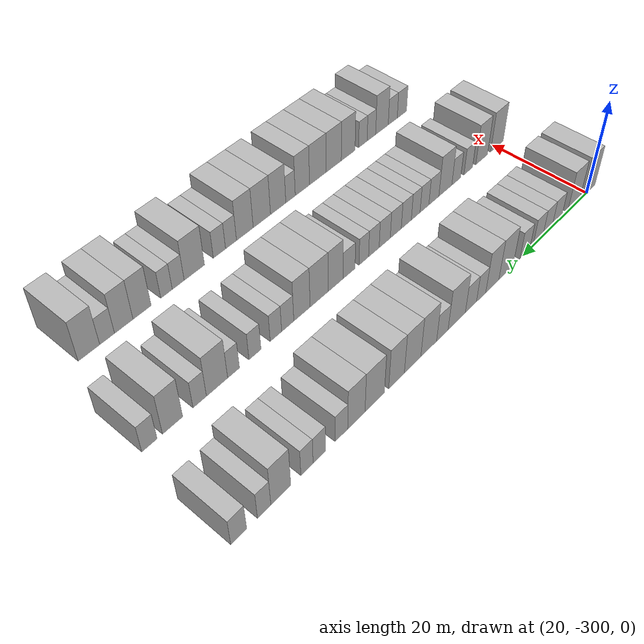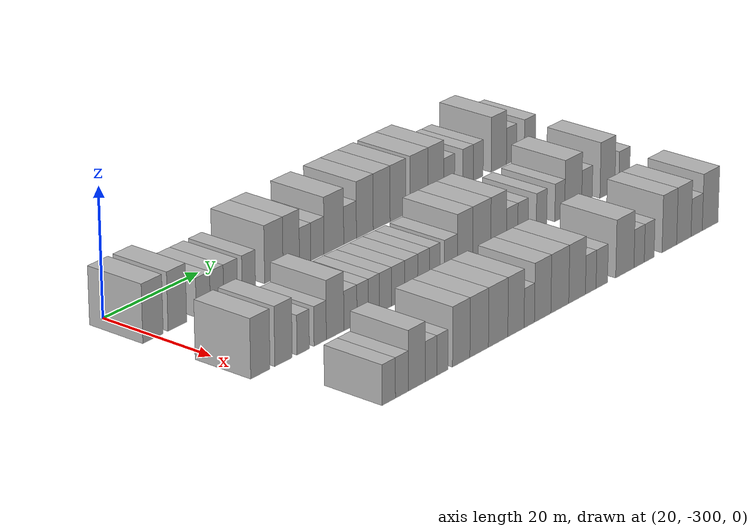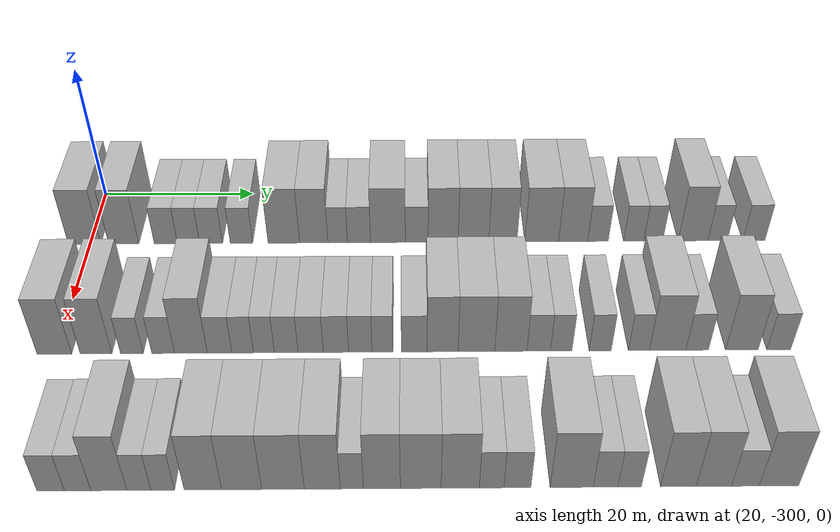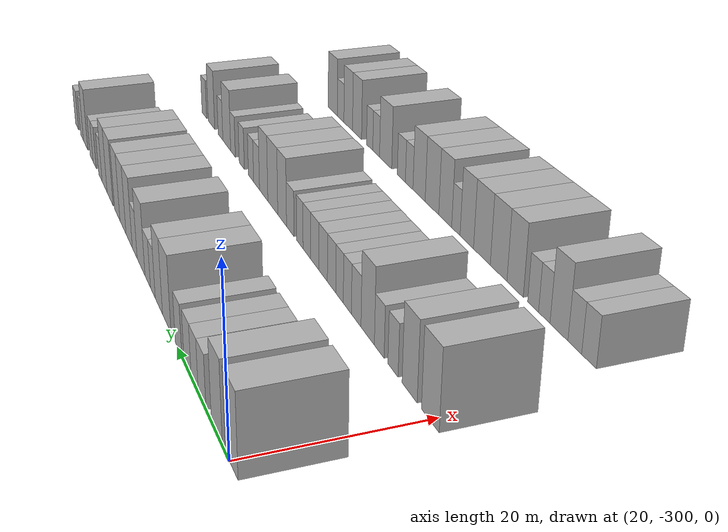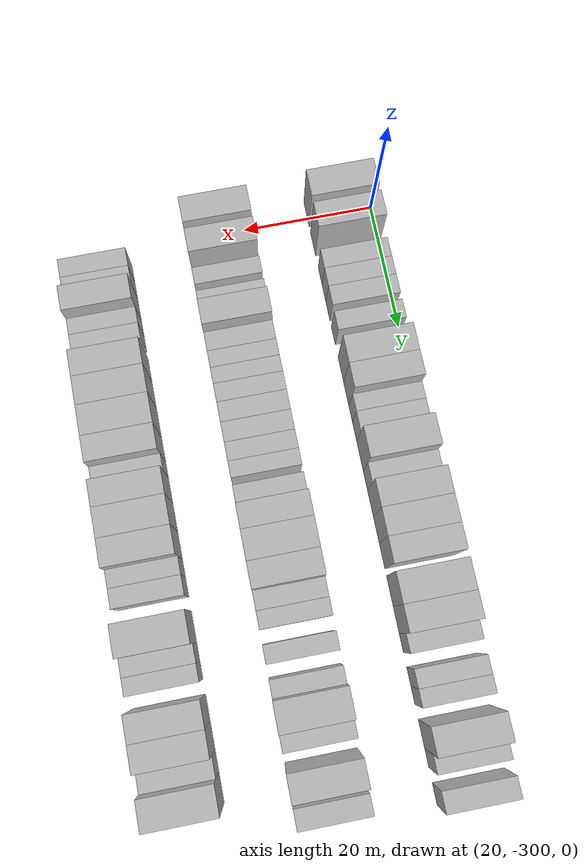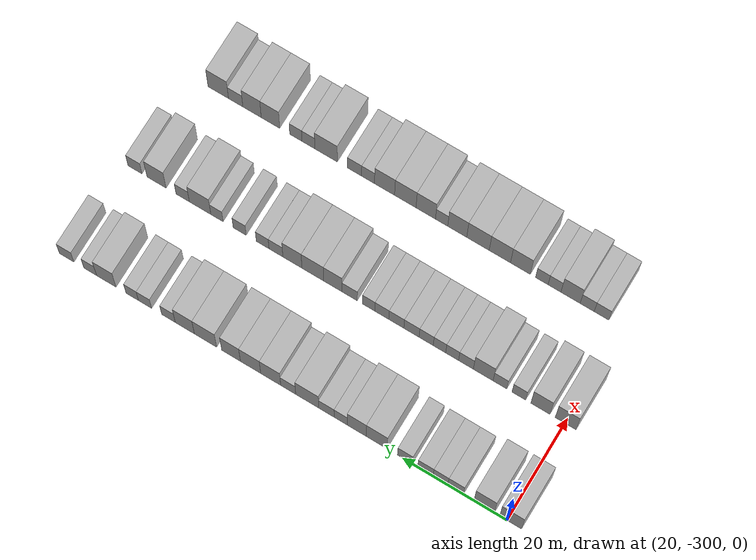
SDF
<sdf version="1.6">
 <world name="default">
  <model name="building_13">
   <static>1</static>
   <pose>25.0000 -300.7179 0 0.000000 0.000000 0.000000</pose>
   <link name="link">
    <pose>0 0 4.50 0 0 0</pose>
    <collision name="collision"><geometry><box><size>10.0000 4.1830 9.0000</size></box></geometry></collision>
    <visual name="visual">
     <cast_shadows>0</cast_shadows>
     <geometry><box><size>10.0000 4.1830 9.0000</size></box></geometry>
     <material>
      <script>
       <uri>model://HANNAS_wall/materials/scripts</uri>
       <uri>model://HANNAS_wall/materials/textures</uri>
       <name>vrc/HANNAS_wall</name>
      </script>
     </material>
    </visual>
   </link>
  </model>
  <model name="building_14">
   <static>1</static>
   <pose>25.0000 -295.6711 0 0.000000 0.000000 0.000000</pose>
   <link name="link">
    <pose>0 0 4.50 0 0 0</pose>
    <collision name="collision"><geometry><box><size>10.0000 3.9105 9.0000</size></box></geometry></collision>
    <visual name="visual">
     <cast_shadows>0</cast_shadows>
     <geometry><box><size>10.0000 3.9105 9.0000</size></box></geometry>
     <material>
      <script>
       <uri>model://HANNAS_wall/materials/scripts</uri>
       <uri>model://HANNAS_wall/materials/textures</uri>
       <name>vrc/HANNAS_wall</name>
      </script>
     </material>
    </visual>
   </link>
  </model>
  <model name="building_15">
   <static>1</static>
   <pose>25.0000 -290.2238 0 0.000000 0.000000 0.000000</pose>
   <link name="link">
    <pose>0 0 3.00 0 0 0</pose>
    <collision name="collision"><geometry><box><size>10.0000 2.9841 6.0000</size></box></geometry></collision>
    <visual name="visual">
     <cast_shadows>0</cast_shadows>
     <geometry><box><size>10.0000 2.9841 6.0000</size></box></geometry>
     <material>
      <script>
       <uri>model://HANNAS_wall/materials/scripts</uri>
       <uri>model://HANNAS_wall/materials/textures</uri>
       <name>vrc/HANNAS_wall</name>
      </script>
     </material>
    </visual>
   </link>
  </model>
  <model name="building_16">
   <static>1</static>
   <pose>25.0000 -287.3022 0 0.000000 0.000000 0.000000</pose>
   <link name="link">
    <pose>0 0 3.00 0 0 0</pose>
    <collision name="collision"><geometry><box><size>10.0000 2.8589 6.0000</size></box></geometry></collision>
    <visual name="visual">
     <cast_shadows>0</cast_shadows>
     <geometry><box><size>10.0000 2.8589 6.0000</size></box></geometry>
     <material>
      <script>
       <uri>model://HANNAS_wall/materials/scripts</uri>
       <uri>model://HANNAS_wall/materials/textures</uri>
       <name>vrc/HANNAS_wall</name>
      </script>
     </material>
    </visual>
   </link>
  </model>
  <model name="building_17">
   <static>1</static>
   <pose>25.0000 -284.3892 0 0.000000 0.000000 0.000000</pose>
   <link name="link">
    <pose>0 0 3.00 0 0 0</pose>
    <collision name="collision"><geometry><box><size>10.0000 2.9672 6.0000</size></box></geometry></collision>
    <visual name="visual">
     <cast_shadows>0</cast_shadows>
     <geometry><box><size>10.0000 2.9672 6.0000</size></box></geometry>
     <material>
      <script>
       <uri>model://HANNAS_wall/materials/scripts</uri>
       <uri>model://HANNAS_wall/materials/textures</uri>
       <name>vrc/HANNAS_wall</name>
      </script>
     </material>
    </visual>
   </link>
  </model>
  <model name="building_18">
   <static>1</static>
   <pose>25.0000 -280.4639 0 0.000000 0.000000 0.000000</pose>
   <link name="link">
    <pose>0 0 3.00 0 0 0</pose>
    <collision name="collision"><geometry><box><size>10.0000 2.8833 6.0000</size></box></geometry></collision>
    <visual name="visual">
     <cast_shadows>0</cast_shadows>
     <geometry><box><size>10.0000 2.8833 6.0000</size></box></geometry>
     <material>
      <script>
       <uri>model://HANNAS_wall/materials/scripts</uri>
       <uri>model://HANNAS_wall/materials/textures</uri>
       <name>vrc/HANNAS_wall</name>
      </script>
     </material>
    </visual>
   </link>
  </model>
  <model name="building_19">
   <static>1</static>
   <pose>25.0000 -274.9902 0 0.000000 0.000000 0.000000</pose>
   <link name="link">
    <pose>0 0 4.50 0 0 0</pose>
    <collision name="collision"><geometry><box><size>10.0000 4.0641 9.0000</size></box></geometry></collision>
    <visual name="visual">
     <cast_shadows>0</cast_shadows>
     <geometry><box><size>10.0000 4.0641 9.0000</size></box></geometry>
     <material>
      <script>
       <uri>model://HANNAS_wall/materials/scripts</uri>
       <uri>model://HANNAS_wall/materials/textures</uri>
       <name>vrc/HANNAS_wall</name>
      </script>
     </material>
    </visual>
   </link>
  </model>
  <model name="building_20">
   <static>1</static>
   <pose>25.0000 -271.1301 0 0.000000 0.000000 0.000000</pose>
   <link name="link">
    <pose>0 0 4.50 0 0 0</pose>
    <collision name="collision"><geometry><box><size>10.0000 3.6562 9.0000</size></box></geometry></collision>
    <visual name="visual">
     <cast_shadows>0</cast_shadows>
     <geometry><box><size>10.0000 3.6562 9.0000</size></box></geometry>
     <material>
      <script>
       <uri>model://HANNAS_wall/materials/scripts</uri>
       <uri>model://HANNAS_wall/materials/textures</uri>
       <name>vrc/HANNAS_wall</name>
      </script>
     </material>
    </visual>
   </link>
  </model>
  <model name="building_21">
   <static>1</static>
   <pose>25.0000 -268.0399 0 0.000000 0.000000 0.000000</pose>
   <link name="link">
    <pose>0 0 3.00 0 0 0</pose>
    <collision name="collision"><geometry><box><size>10.0000 2.5243 6.0000</size></box></geometry></collision>
    <visual name="visual">
     <cast_shadows>0</cast_shadows>
     <geometry><box><size>10.0000 2.5243 6.0000</size></box></geometry>
     <material>
      <script>
       <uri>model://HANNAS_wall/materials/scripts</uri>
       <uri>model://HANNAS_wall/materials/textures</uri>
       <name>vrc/HANNAS_wall</name>
      </script>
     </material>
    </visual>
   </link>
  </model>
  <model name="building_22">
   <static>1</static>
   <pose>25.0000 -265.2825 0 0.000000 0.000000 0.000000</pose>
   <link name="link">
    <pose>0 0 3.00 0 0 0</pose>
    <collision name="collision"><geometry><box><size>10.0000 2.9905 6.0000</size></box></geometry></collision>
    <visual name="visual">
     <cast_shadows>0</cast_shadows>
     <geometry><box><size>10.0000 2.9905 6.0000</size></box></geometry>
     <material>
      <script>
       <uri>model://HANNAS_wall/materials/scripts</uri>
       <uri>model://HANNAS_wall/materials/textures</uri>
       <name>vrc/HANNAS_wall</name>
      </script>
     </material>
    </visual>
   </link>
  </model>
  <model name="building_23">
   <static>1</static>
   <pose>25.0000 -261.5380 0 0.000000 0.000000 0.000000</pose>
   <link name="link">
    <pose>0 0 4.50 0 0 0</pose>
    <collision name="collision"><geometry><box><size>10.0000 4.4985 9.0000</size></box></geometry></collision>
    <visual name="visual">
     <cast_shadows>0</cast_shadows>
     <geometry><box><size>10.0000 4.4985 9.0000</size></box></geometry>
     <material>
      <script>
       <uri>model://HANNAS_wall/materials/scripts</uri>
       <uri>model://HANNAS_wall/materials/textures</uri>
       <name>vrc/HANNAS_wall</name>
      </script>
     </material>
    </visual>
   </link>
  </model>
  <model name="building_24">
   <static>1</static>
   <pose>25.0000 -257.8299 0 0.000000 0.000000 0.000000</pose>
   <link name="link">
    <pose>0 0 3.00 0 0 0</pose>
    <collision name="collision"><geometry><box><size>10.0000 2.9176 6.0000</size></box></geometry></collision>
    <visual name="visual">
     <cast_shadows>0</cast_shadows>
     <geometry><box><size>10.0000 2.9176 6.0000</size></box></geometry>
     <material>
      <script>
       <uri>model://HANNAS_wall/materials/scripts</uri>
       <uri>model://HANNAS_wall/materials/textures</uri>
       <name>vrc/HANNAS_wall</name>
      </script>
     </material>
    </visual>
   </link>
  </model>
  <model name="building_25">
   <static>1</static>
   <pose>25.0000 -254.4162 0 0.000000 0.000000 0.000000</pose>
   <link name="link">
    <pose>0 0 4.50 0 0 0</pose>
    <collision name="collision"><geometry><box><size>10.0000 3.9098 9.0000</size></box></geometry></collision>
    <visual name="visual">
     <cast_shadows>0</cast_shadows>
     <geometry><box><size>10.0000 3.9098 9.0000</size></box></geometry>
     <material>
      <script>
       <uri>model://HANNAS_wall/materials/scripts</uri>
       <uri>model://HANNAS_wall/materials/textures</uri>
       <name>vrc/HANNAS_wall</name>
      </script>
     </material>
    </visual>
   </link>
  </model>
  <model name="building_26">
   <static>1</static>
   <pose>25.0000 -250.4763 0 0.000000 0.000000 0.000000</pose>
   <link name="link">
    <pose>0 0 4.50 0 0 0</pose>
    <collision name="collision"><geometry><box><size>10.0000 3.9700 9.0000</size></box></geometry></collision>
    <visual name="visual">
     <cast_shadows>0</cast_shadows>
     <geometry><box><size>10.0000 3.9700 9.0000</size></box></geometry>
     <material>
      <script>
       <uri>model://HANNAS_wall/materials/scripts</uri>
       <uri>model://HANNAS_wall/materials/textures</uri>
       <name>vrc/HANNAS_wall</name>
      </script>
     </material>
    </visual>
   </link>
  </model>
  <model name="building_27">
   <static>1</static>
   <pose>25.0000 -246.6577 0 0.000000 0.000000 0.000000</pose>
   <link name="link">
    <pose>0 0 4.50 0 0 0</pose>
    <collision name="collision"><geometry><box><size>10.0000 3.6672 9.0000</size></box></geometry></collision>
    <visual name="visual">
     <cast_shadows>0</cast_shadows>
     <geometry><box><size>10.0000 3.6672 9.0000</size></box></geometry>
     <material>
      <script>
       <uri>model://HANNAS_wall/materials/scripts</uri>
       <uri>model://HANNAS_wall/materials/textures</uri>
       <name>vrc/HANNAS_wall</name>
      </script>
     </material>
    </visual>
   </link>
  </model>
  <model name="building_28">
   <static>1</static>
   <pose>25.0000 -241.6378 0 0.000000 0.000000 0.000000</pose>
   <link name="link">
    <pose>0 0 4.50 0 0 0</pose>
    <collision name="collision"><geometry><box><size>10.0000 4.3726 9.0000</size></box></geometry></collision>
    <visual name="visual">
     <cast_shadows>0</cast_shadows>
     <geometry><box><size>10.0000 4.3726 9.0000</size></box></geometry>
     <material>
      <script>
       <uri>model://HANNAS_wall/materials/scripts</uri>
       <uri>model://HANNAS_wall/materials/textures</uri>
       <name>vrc/HANNAS_wall</name>
      </script>
     </material>
    </visual>
   </link>
  </model>
  <model name="building_29">
   <static>1</static>
   <pose>25.0000 -237.5588 0 0.000000 0.000000 0.000000</pose>
   <link name="link">
    <pose>0 0 4.50 0 0 0</pose>
    <collision name="collision"><geometry><box><size>10.0000 3.7855 9.0000</size></box></geometry></collision>
    <visual name="visual">
     <cast_shadows>0</cast_shadows>
     <geometry><box><size>10.0000 3.7855 9.0000</size></box></geometry>
     <material>
      <script>
       <uri>model://HANNAS_wall/materials/scripts</uri>
       <uri>model://HANNAS_wall/materials/textures</uri>
       <name>vrc/HANNAS_wall</name>
      </script>
     </material>
    </visual>
   </link>
  </model>
  <model name="building_30">
   <static>1</static>
   <pose>25.0000 -234.3308 0 0.000000 0.000000 0.000000</pose>
   <link name="link">
    <pose>0 0 3.00 0 0 0</pose>
    <collision name="collision"><geometry><box><size>10.0000 2.6704 6.0000</size></box></geometry></collision>
    <visual name="visual">
     <cast_shadows>0</cast_shadows>
     <geometry><box><size>10.0000 2.6704 6.0000</size></box></geometry>
     <material>
      <script>
       <uri>model://HANNAS_wall/materials/scripts</uri>
       <uri>model://HANNAS_wall/materials/textures</uri>
       <name>vrc/HANNAS_wall</name>
      </script>
     </material>
    </visual>
   </link>
  </model>
  <model name="building_31">
   <static>1</static>
   <pose>25.0000 -229.6946 0 0.000000 0.000000 0.000000</pose>
   <link name="link">
    <pose>0 0 3.00 0 0 0</pose>
    <collision name="collision"><geometry><box><size>10.0000 2.6020 6.0000</size></box></geometry></collision>
    <visual name="visual">
     <cast_shadows>0</cast_shadows>
     <geometry><box><size>10.0000 2.6020 6.0000</size></box></geometry>
     <material>
      <script>
       <uri>model://HANNAS_wall/materials/scripts</uri>
       <uri>model://HANNAS_wall/materials/textures</uri>
       <name>vrc/HANNAS_wall</name>
      </script>
     </material>
    </visual>
   </link>
  </model>
  <model name="building_32">
   <static>1</static>
   <pose>25.0000 -227.1606 0 0.000000 0.000000 0.000000</pose>
   <link name="link">
    <pose>0 0 3.00 0 0 0</pose>
    <collision name="collision"><geometry><box><size>10.0000 2.4660 6.0000</size></box></geometry></collision>
    <visual name="visual">
     <cast_shadows>0</cast_shadows>
     <geometry><box><size>10.0000 2.4660 6.0000</size></box></geometry>
     <material>
      <script>
       <uri>model://HANNAS_wall/materials/scripts</uri>
       <uri>model://HANNAS_wall/materials/textures</uri>
       <name>vrc/HANNAS_wall</name>
      </script>
     </material>
    </visual>
   </link>
  </model>
  <model name="building_33">
   <static>1</static>
   <pose>25.0000 -221.9985 0 0.000000 0.000000 0.000000</pose>
   <link name="link">
    <pose>0 0 4.50 0 0 0</pose>
    <collision name="collision"><geometry><box><size>10.0000 3.8582 9.0000</size></box></geometry></collision>
    <visual name="visual">
     <cast_shadows>0</cast_shadows>
     <geometry><box><size>10.0000 3.8582 9.0000</size></box></geometry>
     <material>
      <script>
       <uri>model://HANNAS_wall/materials/scripts</uri>
       <uri>model://HANNAS_wall/materials/textures</uri>
       <name>vrc/HANNAS_wall</name>
      </script>
     </material>
    </visual>
   </link>
  </model>
  <model name="building_34">
   <static>1</static>
   <pose>25.0000 -218.8048 0 0.000000 0.000000 0.000000</pose>
   <link name="link">
    <pose>0 0 3.00 0 0 0</pose>
    <collision name="collision"><geometry><box><size>10.0000 2.5292 6.0000</size></box></geometry></collision>
    <visual name="visual">
     <cast_shadows>0</cast_shadows>
     <geometry><box><size>10.0000 2.5292 6.0000</size></box></geometry>
     <material>
      <script>
       <uri>model://HANNAS_wall/materials/scripts</uri>
       <uri>model://HANNAS_wall/materials/textures</uri>
       <name>vrc/HANNAS_wall</name>
      </script>
     </material>
    </visual>
   </link>
  </model>
  <model name="building_35">
   <static>1</static>
   <pose>25.0000 -214.0951 0 0.000000 0.000000 0.000000</pose>
   <link name="link">
    <pose>0 0 3.00 0 0 0</pose>
    <collision name="collision"><geometry><box><size>10.0000 2.8903 6.0000</size></box></geometry></collision>
    <visual name="visual">
     <cast_shadows>0</cast_shadows>
     <geometry><box><size>10.0000 2.8903 6.0000</size></box></geometry>
     <material>
      <script>
       <uri>model://HANNAS_wall/materials/scripts</uri>
       <uri>model://HANNAS_wall/materials/textures</uri>
       <name>vrc/HANNAS_wall</name>
      </script>
     </material>
    </visual>
   </link>
  </model>
  <model name="building_185">
   <static>1</static>
   <pose>44.0000 -300.1286 0 0.000000 0.000000 0.000000</pose>
   <link name="link">
    <pose>0 0 4.50 0 0 0</pose>
    <collision name="collision"><geometry><box><size>10.0000 4.0152 9.0000</size></box></geometry></collision>
    <visual name="visual">
     <cast_shadows>0</cast_shadows>
     <geometry><box><size>10.0000 4.0152 9.0000</size></box></geometry>
     <material>
      <script>
       <uri>model://HANNAS_wall/materials/scripts</uri>
       <uri>model://HANNAS_wall/materials/textures</uri>
       <name>vrc/HANNAS_wall</name>
      </script>
     </material>
    </visual>
   </link>
  </model>
  <model name="building_186">
   <static>1</static>
   <pose>44.0000 -295.2820 0 0.000000 0.000000 0.000000</pose>
   <link name="link">
    <pose>0 0 4.50 0 0 0</pose>
    <collision name="collision"><geometry><box><size>10.0000 3.6781 9.0000</size></box></geometry></collision>
    <visual name="visual">
     <cast_shadows>0</cast_shadows>
     <geometry><box><size>10.0000 3.6781 9.0000</size></box></geometry>
     <material>
      <script>
       <uri>model://HANNAS_wall/materials/scripts</uri>
       <uri>model://HANNAS_wall/materials/textures</uri>
       <name>vrc/HANNAS_wall</name>
      </script>
     </material>
    </visual>
   </link>
  </model>
  <model name="building_187">
   <static>1</static>
   <pose>44.0000 -291.1236 0 0.000000 0.000000 0.000000</pose>
   <link name="link">
    <pose>0 0 3.00 0 0 0</pose>
    <collision name="collision"><geometry><box><size>10.0000 2.6385 6.0000</size></box></geometry></collision>
    <visual name="visual">
     <cast_shadows>0</cast_shadows>
     <geometry><box><size>10.0000 2.6385 6.0000</size></box></geometry>
     <material>
      <script>
       <uri>model://HANNAS_wall/materials/scripts</uri>
       <uri>model://HANNAS_wall/materials/textures</uri>
       <name>vrc/HANNAS_wall</name>
      </script>
     </material>
    </visual>
   </link>
  </model>
  <model name="building_188">
   <static>1</static>
   <pose>44.0000 -287.4825 0 0.000000 0.000000 0.000000</pose>
   <link name="link">
    <pose>0 0 3.00 0 0 0</pose>
    <collision name="collision"><geometry><box><size>10.0000 2.6437 6.0000</size></box></geometry></collision>
    <visual name="visual">
     <cast_shadows>0</cast_shadows>
     <geometry><box><size>10.0000 2.6437 6.0000</size></box></geometry>
     <material>
      <script>
       <uri>model://HANNAS_wall/materials/scripts</uri>
       <uri>model://HANNAS_wall/materials/textures</uri>
       <name>vrc/HANNAS_wall</name>
      </script>
     </material>
    </visual>
   </link>
  </model>
  <model name="building_189">
   <static>1</static>
   <pose>44.0000 -284.2543 0 0.000000 0.000000 0.000000</pose>
   <link name="link">
    <pose>0 0 4.50 0 0 0</pose>
    <collision name="collision"><geometry><box><size>10.0000 3.8128 9.0000</size></box></geometry></collision>
    <visual name="visual">
     <cast_shadows>0</cast_shadows>
     <geometry><box><size>10.0000 3.8128 9.0000</size></box></geometry>
     <material>
      <script>
       <uri>model://HANNAS_wall/materials/scripts</uri>
       <uri>model://HANNAS_wall/materials/textures</uri>
       <name>vrc/HANNAS_wall</name>
      </script>
     </material>
    </visual>
   </link>
  </model>
  <model name="building_190">
   <static>1</static>
   <pose>44.0000 -280.9143 0 0.000000 0.000000 0.000000</pose>
   <link name="link">
    <pose>0 0 3.00 0 0 0</pose>
    <collision name="collision"><geometry><box><size>10.0000 2.8671 6.0000</size></box></geometry></collision>
    <visual name="visual">
     <cast_shadows>0</cast_shadows>
     <geometry><box><size>10.0000 2.8671 6.0000</size></box></geometry>
     <material>
      <script>
       <uri>model://HANNAS_wall/materials/scripts</uri>
       <uri>model://HANNAS_wall/materials/textures</uri>
       <name>vrc/HANNAS_wall</name>
      </script>
     </material>
    </visual>
   </link>
  </model>
  <model name="building_191">
   <static>1</static>
   <pose>44.0000 -278.2283 0 0.000000 0.000000 0.000000</pose>
   <link name="link">
    <pose>0 0 3.00 0 0 0</pose>
    <collision name="collision"><geometry><box><size>10.0000 2.5049 6.0000</size></box></geometry></collision>
    <visual name="visual">
     <cast_shadows>0</cast_shadows>
     <geometry><box><size>10.0000 2.5049 6.0000</size></box></geometry>
     <material>
      <script>
       <uri>model://HANNAS_wall/materials/scripts</uri>
       <uri>model://HANNAS_wall/materials/textures</uri>
       <name>vrc/HANNAS_wall</name>
      </script>
     </material>
    </visual>
   </link>
  </model>
  <model name="building_192">
   <static>1</static>
   <pose>44.0000 -275.7632 0 0.000000 0.000000 0.000000</pose>
   <link name="link">
    <pose>0 0 3.00 0 0 0</pose>
    <collision name="collision"><geometry><box><size>10.0000 2.4251 6.0000</size></box></geometry></collision>
    <visual name="visual">
     <cast_shadows>0</cast_shadows>
     <geometry><box><size>10.0000 2.4251 6.0000</size></box></geometry>
     <material>
      <script>
       <uri>model://HANNAS_wall/materials/scripts</uri>
       <uri>model://HANNAS_wall/materials/textures</uri>
       <name>vrc/HANNAS_wall</name>
      </script>
     </material>
    </visual>
   </link>
  </model>
  <model name="building_193">
   <static>1</static>
   <pose>44.0000 -273.1752 0 0.000000 0.000000 0.000000</pose>
   <link name="link">
    <pose>0 0 3.00 0 0 0</pose>
    <collision name="collision"><geometry><box><size>10.0000 2.7511 6.0000</size></box></geometry></collision>
    <visual name="visual">
     <cast_shadows>0</cast_shadows>
     <geometry><box><size>10.0000 2.7511 6.0000</size></box></geometry>
     <material>
      <script>
       <uri>model://HANNAS_wall/materials/scripts</uri>
       <uri>model://HANNAS_wall/materials/textures</uri>
       <name>vrc/HANNAS_wall</name>
      </script>
     </material>
    </visual>
   </link>
  </model>
  <model name="building_194">
   <static>1</static>
   <pose>44.0000 -270.3210 0 0.000000 0.000000 0.000000</pose>
   <link name="link">
    <pose>0 0 3.00 0 0 0</pose>
    <collision name="collision"><geometry><box><size>10.0000 2.9573 6.0000</size></box></geometry></collision>
    <visual name="visual">
     <cast_shadows>0</cast_shadows>
     <geometry><box><size>10.0000 2.9573 6.0000</size></box></geometry>
     <material>
      <script>
       <uri>model://HANNAS_wall/materials/scripts</uri>
       <uri>model://HANNAS_wall/materials/textures</uri>
       <name>vrc/HANNAS_wall</name>
      </script>
     </material>
    </visual>
   </link>
  </model>
  <model name="building_195">
   <static>1</static>
   <pose>44.0000 -267.3703 0 0.000000 0.000000 0.000000</pose>
   <link name="link">
    <pose>0 0 3.00 0 0 0</pose>
    <collision name="collision"><geometry><box><size>10.0000 2.9440 6.0000</size></box></geometry></collision>
    <visual name="visual">
     <cast_shadows>0</cast_shadows>
     <geometry><box><size>10.0000 2.9440 6.0000</size></box></geometry>
     <material>
      <script>
       <uri>model://HANNAS_wall/materials/scripts</uri>
       <uri>model://HANNAS_wall/materials/textures</uri>
       <name>vrc/HANNAS_wall</name>
      </script>
     </material>
    </visual>
   </link>
  </model>
  <model name="building_196">
   <static>1</static>
   <pose>44.0000 -264.5345 0 0.000000 0.000000 0.000000</pose>
   <link name="link">
    <pose>0 0 3.00 0 0 0</pose>
    <collision name="collision"><geometry><box><size>10.0000 2.7276 6.0000</size></box></geometry></collision>
    <visual name="visual">
     <cast_shadows>0</cast_shadows>
     <geometry><box><size>10.0000 2.7276 6.0000</size></box></geometry>
     <material>
      <script>
       <uri>model://HANNAS_wall/materials/scripts</uri>
       <uri>model://HANNAS_wall/materials/textures</uri>
       <name>vrc/HANNAS_wall</name>
      </script>
     </material>
    </visual>
   </link>
  </model>
  <model name="building_197">
   <static>1</static>
   <pose>44.0000 -261.9532 0 0.000000 0.000000 0.000000</pose>
   <link name="link">
    <pose>0 0 3.00 0 0 0</pose>
    <collision name="collision"><geometry><box><size>10.0000 2.4349 6.0000</size></box></geometry></collision>
    <visual name="visual">
     <cast_shadows>0</cast_shadows>
     <geometry><box><size>10.0000 2.4349 6.0000</size></box></geometry>
     <material>
      <script>
       <uri>model://HANNAS_wall/materials/scripts</uri>
       <uri>model://HANNAS_wall/materials/textures</uri>
       <name>vrc/HANNAS_wall</name>
      </script>
     </material>
    </visual>
   </link>
  </model>
  <model name="building_198">
   <static>1</static>
   <pose>44.0000 -258.2451 0 0.000000 0.000000 0.000000</pose>
   <link name="link">
    <pose>0 0 3.00 0 0 0</pose>
    <collision name="collision"><geometry><box><size>10.0000 2.9815 6.0000</size></box></geometry></collision>
    <visual name="visual">
     <cast_shadows>0</cast_shadows>
     <geometry><box><size>10.0000 2.9815 6.0000</size></box></geometry>
     <material>
      <script>
       <uri>model://HANNAS_wall/materials/scripts</uri>
       <uri>model://HANNAS_wall/materials/textures</uri>
       <name>vrc/HANNAS_wall</name>
      </script>
     </material>
    </visual>
   </link>
  </model>
  <model name="building_199">
   <static>1</static>
   <pose>44.0000 -254.9480 0 0.000000 0.000000 0.000000</pose>
   <link name="link">
    <pose>0 0 4.50 0 0 0</pose>
    <collision name="collision"><geometry><box><size>10.0000 3.6126 9.0000</size></box></geometry></collision>
    <visual name="visual">
     <cast_shadows>0</cast_shadows>
     <geometry><box><size>10.0000 3.6126 9.0000</size></box></geometry>
     <material>
      <script>
       <uri>model://HANNAS_wall/materials/scripts</uri>
       <uri>model://HANNAS_wall/materials/textures</uri>
       <name>vrc/HANNAS_wall</name>
      </script>
     </material>
    </visual>
   </link>
  </model>
  <model name="building_200">
   <static>1</static>
   <pose>44.0000 -251.0005 0 0.000000 0.000000 0.000000</pose>
   <link name="link">
    <pose>0 0 4.50 0 0 0</pose>
    <collision name="collision"><geometry><box><size>10.0000 4.2825 9.0000</size></box></geometry></collision>
    <visual name="visual">
     <cast_shadows>0</cast_shadows>
     <geometry><box><size>10.0000 4.2825 9.0000</size></box></geometry>
     <material>
      <script>
       <uri>model://HANNAS_wall/materials/scripts</uri>
       <uri>model://HANNAS_wall/materials/textures</uri>
       <name>vrc/HANNAS_wall</name>
      </script>
     </material>
    </visual>
   </link>
  </model>
  <model name="building_201">
   <static>1</static>
   <pose>44.0000 -246.9840 0 0.000000 0.000000 0.000000</pose>
   <link name="link">
    <pose>0 0 4.50 0 0 0</pose>
    <collision name="collision"><geometry><box><size>10.0000 3.7504 9.0000</size></box></geometry></collision>
    <visual name="visual">
     <cast_shadows>0</cast_shadows>
     <geometry><box><size>10.0000 3.7504 9.0000</size></box></geometry>
     <material>
      <script>
       <uri>model://HANNAS_wall/materials/scripts</uri>
       <uri>model://HANNAS_wall/materials/textures</uri>
       <name>vrc/HANNAS_wall</name>
      </script>
     </material>
    </visual>
   </link>
  </model>
  <model name="building_202">
   <static>1</static>
   <pose>44.0000 -243.7373 0 0.000000 0.000000 0.000000</pose>
   <link name="link">
    <pose>0 0 3.00 0 0 0</pose>
    <collision name="collision"><geometry><box><size>10.0000 2.7432 6.0000</size></box></geometry></collision>
    <visual name="visual">
     <cast_shadows>0</cast_shadows>
     <geometry><box><size>10.0000 2.7432 6.0000</size></box></geometry>
     <material>
      <script>
       <uri>model://HANNAS_wall/materials/scripts</uri>
       <uri>model://HANNAS_wall/materials/textures</uri>
       <name>vrc/HANNAS_wall</name>
      </script>
     </material>
    </visual>
   </link>
  </model>
  <model name="building_203">
   <static>1</static>
   <pose>44.0000 -241.1050 0 0.000000 0.000000 0.000000</pose>
   <link name="link">
    <pose>0 0 3.00 0 0 0</pose>
    <collision name="collision"><geometry><box><size>10.0000 2.5212 6.0000</size></box></geometry></collision>
    <visual name="visual">
     <cast_shadows>0</cast_shadows>
     <geometry><box><size>10.0000 2.5212 6.0000</size></box></geometry>
     <material>
      <script>
       <uri>model://HANNAS_wall/materials/scripts</uri>
       <uri>model://HANNAS_wall/materials/textures</uri>
       <name>vrc/HANNAS_wall</name>
      </script>
     </material>
    </visual>
   </link>
  </model>
  <model name="building_204">
   <static>1</static>
   <pose>44.0000 -236.5542 0 0.000000 0.000000 0.000000</pose>
   <link name="link">
    <pose>0 0 3.00 0 0 0</pose>
    <collision name="collision"><geometry><box><size>10.0000 2.5805 6.0000</size></box></geometry></collision>
    <visual name="visual">
     <cast_shadows>0</cast_shadows>
     <geometry><box><size>10.0000 2.5805 6.0000</size></box></geometry>
     <material>
      <script>
       <uri>model://HANNAS_wall/materials/scripts</uri>
       <uri>model://HANNAS_wall/materials/textures</uri>
       <name>vrc/HANNAS_wall</name>
      </script>
     </material>
    </visual>
   </link>
  </model>
  <model name="building_205">
   <static>1</static>
   <pose>44.0000 -232.0425 0 0.000000 0.000000 0.000000</pose>
   <link name="link">
    <pose>0 0 3.00 0 0 0</pose>
    <collision name="collision"><geometry><box><size>10.0000 2.4430 6.0000</size></box></geometry></collision>
    <visual name="visual">
     <cast_shadows>0</cast_shadows>
     <geometry><box><size>10.0000 2.4430 6.0000</size></box></geometry>
     <material>
      <script>
       <uri>model://HANNAS_wall/materials/scripts</uri>
       <uri>model://HANNAS_wall/materials/textures</uri>
       <name>vrc/HANNAS_wall</name>
      </script>
     </material>
    </visual>
   </link>
  </model>
  <model name="building_206">
   <static>1</static>
   <pose>44.0000 -228.6802 0 0.000000 0.000000 0.000000</pose>
   <link name="link">
    <pose>0 0 4.50 0 0 0</pose>
    <collision name="collision"><geometry><box><size>10.0000 4.2815 9.0000</size></box></geometry></collision>
    <visual name="visual">
     <cast_shadows>0</cast_shadows>
     <geometry><box><size>10.0000 4.2815 9.0000</size></box></geometry>
     <material>
      <script>
       <uri>model://HANNAS_wall/materials/scripts</uri>
       <uri>model://HANNAS_wall/materials/textures</uri>
       <name>vrc/HANNAS_wall</name>
      </script>
     </material>
    </visual>
   </link>
  </model>
  <model name="building_207">
   <static>1</static>
   <pose>44.0000 -225.2150 0 0.000000 0.000000 0.000000</pose>
   <link name="link">
    <pose>0 0 3.00 0 0 0</pose>
    <collision name="collision"><geometry><box><size>10.0000 2.6490 6.0000</size></box></geometry></collision>
    <visual name="visual">
     <cast_shadows>0</cast_shadows>
     <geometry><box><size>10.0000 2.6490 6.0000</size></box></geometry>
     <material>
      <script>
       <uri>model://HANNAS_wall/materials/scripts</uri>
       <uri>model://HANNAS_wall/materials/textures</uri>
       <name>vrc/HANNAS_wall</name>
      </script>
     </material>
    </visual>
   </link>
  </model>
  <model name="building_208">
   <static>1</static>
   <pose>44.0000 -219.9793 0 0.000000 0.000000 0.000000</pose>
   <link name="link">
    <pose>0 0 4.50 0 0 0</pose>
    <collision name="collision"><geometry><box><size>10.0000 3.8223 9.0000</size></box></geometry></collision>
    <visual name="visual">
     <cast_shadows>0</cast_shadows>
     <geometry><box><size>10.0000 3.8223 9.0000</size></box></geometry>
     <material>
      <script>
       <uri>model://HANNAS_wall/materials/scripts</uri>
       <uri>model://HANNAS_wall/materials/textures</uri>
       <name>vrc/HANNAS_wall</name>
      </script>
     </material>
    </visual>
   </link>
  </model>
  <model name="building_209">
   <static>1</static>
   <pose>44.0000 -215.6632 0 0.000000 0.000000 0.000000</pose>
   <link name="link">
    <pose>0 0 3.00 0 0 0</pose>
    <collision name="collision"><geometry><box><size>10.0000 2.8100 6.0000</size></box></geometry></collision>
    <visual name="visual">
     <cast_shadows>0</cast_shadows>
     <geometry><box><size>10.0000 2.8100 6.0000</size></box></geometry>
     <material>
      <script>
       <uri>model://HANNAS_wall/materials/scripts</uri>
       <uri>model://HANNAS_wall/materials/textures</uri>
       <name>vrc/HANNAS_wall</name>
      </script>
     </material>
    </visual>
   </link>
  </model>
  <model name="building_363">
   <static>1</static>
   <pose>63.0000 -296.0261 0 0.000000 0.000000 0.000000</pose>
   <link name="link">
    <pose>0 0 3.00 0 0 0</pose>
    <collision name="collision"><geometry><box><size>10.0000 2.8350 6.0000</size></box></geometry></collision>
    <visual name="visual">
     <cast_shadows>0</cast_shadows>
     <geometry><box><size>10.0000 2.8350 6.0000</size></box></geometry>
     <material>
      <script>
       <uri>model://HANNAS_wall/materials/scripts</uri>
       <uri>model://HANNAS_wall/materials/textures</uri>
       <name>vrc/HANNAS_wall</name>
      </script>
     </material>
    </visual>
   </link>
  </model>
  <model name="building_364">
   <static>1</static>
   <pose>63.0000 -293.2456 0 0.000000 0.000000 0.000000</pose>
   <link name="link">
    <pose>0 0 3.00 0 0 0</pose>
    <collision name="collision"><geometry><box><size>10.0000 2.7259 6.0000</size></box></geometry></collision>
    <visual name="visual">
     <cast_shadows>0</cast_shadows>
     <geometry><box><size>10.0000 2.7259 6.0000</size></box></geometry>
     <material>
      <script>
       <uri>model://HANNAS_wall/materials/scripts</uri>
       <uri>model://HANNAS_wall/materials/textures</uri>
       <name>vrc/HANNAS_wall</name>
      </script>
     </material>
    </visual>
   </link>
  </model>
  <model name="building_365">
   <static>1</static>
   <pose>63.0000 -290.0153 0 0.000000 0.000000 0.000000</pose>
   <link name="link">
    <pose>0 0 4.50 0 0 0</pose>
    <collision name="collision"><geometry><box><size>10.0000 3.7347 9.0000</size></box></geometry></collision>
    <visual name="visual">
     <cast_shadows>0</cast_shadows>
     <geometry><box><size>10.0000 3.7347 9.0000</size></box></geometry>
     <material>
      <script>
       <uri>model://HANNAS_wall/materials/scripts</uri>
       <uri>model://HANNAS_wall/materials/textures</uri>
       <name>vrc/HANNAS_wall</name>
      </script>
     </material>
    </visual>
   </link>
  </model>
  <model name="building_366">
   <static>1</static>
   <pose>63.0000 -286.9041 0 0.000000 0.000000 0.000000</pose>
   <link name="link">
    <pose>0 0 3.00 0 0 0</pose>
    <collision name="collision"><geometry><box><size>10.0000 2.4876 6.0000</size></box></geometry></collision>
    <visual name="visual">
     <cast_shadows>0</cast_shadows>
     <geometry><box><size>10.0000 2.4876 6.0000</size></box></geometry>
     <material>
      <script>
       <uri>model://HANNAS_wall/materials/scripts</uri>
       <uri>model://HANNAS_wall/materials/textures</uri>
       <name>vrc/HANNAS_wall</name>
      </script>
     </material>
    </visual>
   </link>
  </model>
  <model name="building_367">
   <static>1</static>
   <pose>63.0000 -284.4394 0 0.000000 0.000000 0.000000</pose>
   <link name="link">
    <pose>0 0 3.00 0 0 0</pose>
    <collision name="collision"><geometry><box><size>10.0000 2.4418 6.0000</size></box></geometry></collision>
    <visual name="visual">
     <cast_shadows>0</cast_shadows>
     <geometry><box><size>10.0000 2.4418 6.0000</size></box></geometry>
     <material>
      <script>
       <uri>model://HANNAS_wall/materials/scripts</uri>
       <uri>model://HANNAS_wall/materials/textures</uri>
       <name>vrc/HANNAS_wall</name>
      </script>
     </material>
    </visual>
   </link>
  </model>
  <model name="building_368">
   <static>1</static>
   <pose>63.0000 -280.2826 0 0.000000 0.000000 0.000000</pose>
   <link name="link">
    <pose>0 0 4.50 0 0 0</pose>
    <collision name="collision"><geometry><box><size>10.0000 3.8718 9.0000</size></box></geometry></collision>
    <visual name="visual">
     <cast_shadows>0</cast_shadows>
     <geometry><box><size>10.0000 3.8718 9.0000</size></box></geometry>
     <material>
      <script>
       <uri>model://HANNAS_wall/materials/scripts</uri>
       <uri>model://HANNAS_wall/materials/textures</uri>
       <name>vrc/HANNAS_wall</name>
      </script>
     </material>
    </visual>
   </link>
  </model>
  <model name="building_369">
   <static>1</static>
   <pose>63.0000 -276.2683 0 0.000000 0.000000 0.000000</pose>
   <link name="link">
    <pose>0 0 4.50 0 0 0</pose>
    <collision name="collision"><geometry><box><size>10.0000 4.1569 9.0000</size></box></geometry></collision>
    <visual name="visual">
     <cast_shadows>0</cast_shadows>
     <geometry><box><size>10.0000 4.1569 9.0000</size></box></geometry>
     <material>
      <script>
       <uri>model://HANNAS_wall/materials/scripts</uri>
       <uri>model://HANNAS_wall/materials/textures</uri>
       <name>vrc/HANNAS_wall</name>
      </script>
     </material>
    </visual>
   </link>
  </model>
  <model name="building_370">
   <static>1</static>
   <pose>63.0000 -271.9875 0 0.000000 0.000000 0.000000</pose>
   <link name="link">
    <pose>0 0 4.50 0 0 0</pose>
    <collision name="collision"><geometry><box><size>10.0000 4.4048 9.0000</size></box></geometry></collision>
    <visual name="visual">
     <cast_shadows>0</cast_shadows>
     <geometry><box><size>10.0000 4.4048 9.0000</size></box></geometry>
     <material>
      <script>
       <uri>model://HANNAS_wall/materials/scripts</uri>
       <uri>model://HANNAS_wall/materials/textures</uri>
       <name>vrc/HANNAS_wall</name>
      </script>
     </material>
    </visual>
   </link>
  </model>
  <model name="building_371">
   <static>1</static>
   <pose>63.0000 -267.9213 0 0.000000 0.000000 0.000000</pose>
   <link name="link">
    <pose>0 0 4.50 0 0 0</pose>
    <collision name="collision"><geometry><box><size>10.0000 3.7276 9.0000</size></box></geometry></collision>
    <visual name="visual">
     <cast_shadows>0</cast_shadows>
     <geometry><box><size>10.0000 3.7276 9.0000</size></box></geometry>
     <material>
      <script>
       <uri>model://HANNAS_wall/materials/scripts</uri>
       <uri>model://HANNAS_wall/materials/textures</uri>
       <name>vrc/HANNAS_wall</name>
      </script>
     </material>
    </visual>
   </link>
  </model>
  <model name="building_372">
   <static>1</static>
   <pose>63.0000 -264.8529 0 0.000000 0.000000 0.000000</pose>
   <link name="link">
    <pose>0 0 3.00 0 0 0</pose>
    <collision name="collision"><geometry><box><size>10.0000 2.4090 6.0000</size></box></geometry></collision>
    <visual name="visual">
     <cast_shadows>0</cast_shadows>
     <geometry><box><size>10.0000 2.4090 6.0000</size></box></geometry>
     <material>
      <script>
       <uri>model://HANNAS_wall/materials/scripts</uri>
       <uri>model://HANNAS_wall/materials/textures</uri>
       <name>vrc/HANNAS_wall</name>
      </script>
     </material>
    </visual>
   </link>
  </model>
  <model name="building_373">
   <static>1</static>
   <pose>63.0000 -261.7343 0 0.000000 0.000000 0.000000</pose>
   <link name="link">
    <pose>0 0 4.50 0 0 0</pose>
    <collision name="collision"><geometry><box><size>10.0000 3.8282 9.0000</size></box></geometry></collision>
    <visual name="visual">
     <cast_shadows>0</cast_shadows>
     <geometry><box><size>10.0000 3.8282 9.0000</size></box></geometry>
     <material>
      <script>
       <uri>model://HANNAS_wall/materials/scripts</uri>
       <uri>model://HANNAS_wall/materials/textures</uri>
       <name>vrc/HANNAS_wall</name>
      </script>
     </material>
    </visual>
   </link>
  </model>
  <model name="building_374">
   <static>1</static>
   <pose>63.0000 -257.7057 0 0.000000 0.000000 0.000000</pose>
   <link name="link">
    <pose>0 0 4.50 0 0 0</pose>
    <collision name="collision"><geometry><box><size>10.0000 4.2290 9.0000</size></box></geometry></collision>
    <visual name="visual">
     <cast_shadows>0</cast_shadows>
     <geometry><box><size>10.0000 4.2290 9.0000</size></box></geometry>
     <material>
      <script>
       <uri>model://HANNAS_wall/materials/scripts</uri>
       <uri>model://HANNAS_wall/materials/textures</uri>
       <name>vrc/HANNAS_wall</name>
      </script>
     </material>
    </visual>
   </link>
  </model>
  <model name="building_375">
   <static>1</static>
   <pose>63.0000 -253.6033 0 0.000000 0.000000 0.000000</pose>
   <link name="link">
    <pose>0 0 4.50 0 0 0</pose>
    <collision name="collision"><geometry><box><size>10.0000 3.9759 9.0000</size></box></geometry></collision>
    <visual name="visual">
     <cast_shadows>0</cast_shadows>
     <geometry><box><size>10.0000 3.9759 9.0000</size></box></geometry>
     <material>
      <script>
       <uri>model://HANNAS_wall/materials/scripts</uri>
       <uri>model://HANNAS_wall/materials/textures</uri>
       <name>vrc/HANNAS_wall</name>
      </script>
     </material>
    </visual>
   </link>
  </model>
  <model name="building_376">
   <static>1</static>
   <pose>63.0000 -250.3371 0 0.000000 0.000000 0.000000</pose>
   <link name="link">
    <pose>0 0 3.00 0 0 0</pose>
    <collision name="collision"><geometry><box><size>10.0000 2.5563 6.0000</size></box></geometry></collision>
    <visual name="visual">
     <cast_shadows>0</cast_shadows>
     <geometry><box><size>10.0000 2.5563 6.0000</size></box></geometry>
     <material>
      <script>
       <uri>model://HANNAS_wall/materials/scripts</uri>
       <uri>model://HANNAS_wall/materials/textures</uri>
       <name>vrc/HANNAS_wall</name>
      </script>
     </material>
    </visual>
   </link>
  </model>
  <model name="building_377">
   <static>1</static>
   <pose>63.0000 -247.6625 0 0.000000 0.000000 0.000000</pose>
   <link name="link">
    <pose>0 0 3.00 0 0 0</pose>
    <collision name="collision"><geometry><box><size>10.0000 2.7930 6.0000</size></box></geometry></collision>
    <visual name="visual">
     <cast_shadows>0</cast_shadows>
     <geometry><box><size>10.0000 2.7930 6.0000</size></box></geometry>
     <material>
      <script>
       <uri>model://HANNAS_wall/materials/scripts</uri>
       <uri>model://HANNAS_wall/materials/textures</uri>
       <name>vrc/HANNAS_wall</name>
      </script>
     </material>
    </visual>
   </link>
  </model>
  <model name="building_378">
   <static>1</static>
   <pose>63.0000 -242.0284 0 0.000000 0.000000 0.000000</pose>
   <link name="link">
    <pose>0 0 4.50 0 0 0</pose>
    <collision name="collision"><geometry><box><size>10.0000 4.4752 9.0000</size></box></geometry></collision>
    <visual name="visual">
     <cast_shadows>0</cast_shadows>
     <geometry><box><size>10.0000 4.4752 9.0000</size></box></geometry>
     <material>
      <script>
       <uri>model://HANNAS_wall/materials/scripts</uri>
       <uri>model://HANNAS_wall/materials/textures</uri>
       <name>vrc/HANNAS_wall</name>
      </script>
     </material>
    </visual>
   </link>
  </model>
  <model name="building_379">
   <static>1</static>
   <pose>63.0000 -238.5069 0 0.000000 0.000000 0.000000</pose>
   <link name="link">
    <pose>0 0 3.00 0 0 0</pose>
    <collision name="collision"><geometry><box><size>10.0000 2.5676 6.0000</size></box></geometry></collision>
    <visual name="visual">
     <cast_shadows>0</cast_shadows>
     <geometry><box><size>10.0000 2.5676 6.0000</size></box></geometry>
     <material>
      <script>
       <uri>model://HANNAS_wall/materials/scripts</uri>
       <uri>model://HANNAS_wall/materials/textures</uri>
       <name>vrc/HANNAS_wall</name>
      </script>
     </material>
    </visual>
   </link>
  </model>
  <model name="building_380">
   <static>1</static>
   <pose>63.0000 -235.9995 0 0.000000 0.000000 0.000000</pose>
   <link name="link">
    <pose>0 0 3.00 0 0 0</pose>
    <collision name="collision"><geometry><box><size>10.0000 2.4473 6.0000</size></box></geometry></collision>
    <visual name="visual">
     <cast_shadows>0</cast_shadows>
     <geometry><box><size>10.0000 2.4473 6.0000</size></box></geometry>
     <material>
      <script>
       <uri>model://HANNAS_wall/materials/scripts</uri>
       <uri>model://HANNAS_wall/materials/textures</uri>
       <name>vrc/HANNAS_wall</name>
      </script>
     </material>
    </visual>
   </link>
  </model>
  <model name="building_381">
   <static>1</static>
   <pose>63.0000 -230.9256 0 0.000000 0.000000 0.000000</pose>
   <link name="link">
    <pose>0 0 4.50 0 0 0</pose>
    <collision name="collision"><geometry><box><size>10.0000 3.7004 9.0000</size></box></geometry></collision>
    <visual name="visual">
     <cast_shadows>0</cast_shadows>
     <geometry><box><size>10.0000 3.7004 9.0000</size></box></geometry>
     <material>
      <script>
       <uri>model://HANNAS_wall/materials/scripts</uri>
       <uri>model://HANNAS_wall/materials/textures</uri>
       <name>vrc/HANNAS_wall</name>
      </script>
     </material>
    </visual>
   </link>
  </model>
  <model name="building_382">
   <static>1</static>
   <pose>63.0000 -227.2329 0 0.000000 0.000000 0.000000</pose>
   <link name="link">
    <pose>0 0 4.50 0 0 0</pose>
    <collision name="collision"><geometry><box><size>10.0000 3.6850 9.0000</size></box></geometry></collision>
    <visual name="visual">
     <cast_shadows>0</cast_shadows>
     <geometry><box><size>10.0000 3.6850 9.0000</size></box></geometry>
     <material>
      <script>
       <uri>model://HANNAS_wall/materials/scripts</uri>
       <uri>model://HANNAS_wall/materials/textures</uri>
       <name>vrc/HANNAS_wall</name>
      </script>
     </material>
    </visual>
   </link>
  </model>
  <model name="building_383">
   <static>1</static>
   <pose>63.0000 -223.9465 0 0.000000 0.000000 0.000000</pose>
   <link name="link">
    <pose>0 0 3.00 0 0 0</pose>
    <collision name="collision"><geometry><box><size>10.0000 2.8879 6.0000</size></box></geometry></collision>
    <visual name="visual">
     <cast_shadows>0</cast_shadows>
     <geometry><box><size>10.0000 2.8879 6.0000</size></box></geometry>
     <material>
      <script>
       <uri>model://HANNAS_wall/materials/scripts</uri>
       <uri>model://HANNAS_wall/materials/textures</uri>
       <name>vrc/HANNAS_wall</name>
      </script>
     </material>
    </visual>
   </link>
  </model>
  <model name="building_384">
   <static>1</static>
   <pose>63.0000 -220.4487 0 0.000000 0.000000 0.000000</pose>
   <link name="link">
    <pose>0 0 4.50 0 0 0</pose>
    <collision name="collision"><geometry><box><size>10.0000 4.1079 9.0000</size></box></geometry></collision>
    <visual name="visual">
     <cast_shadows>0</cast_shadows>
     <geometry><box><size>10.0000 4.1079 9.0000</size></box></geometry>
     <material>
      <script>
       <uri>model://HANNAS_wall/materials/scripts</uri>
       <uri>model://HANNAS_wall/materials/textures</uri>
       <name>vrc/HANNAS_wall</name>
      </script>
     </material>
    </visual>
   </link>
  </model>
 </world>
</sdf>
